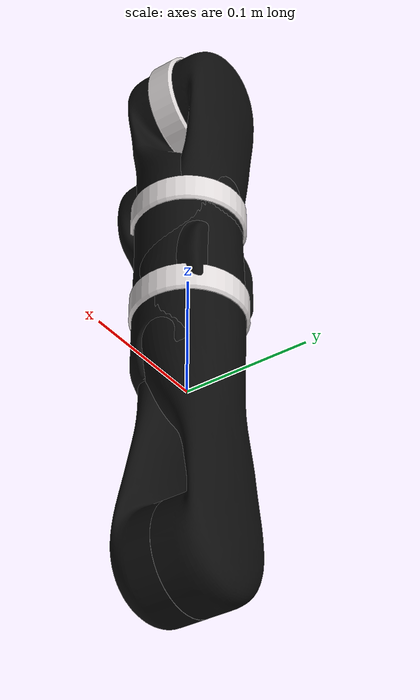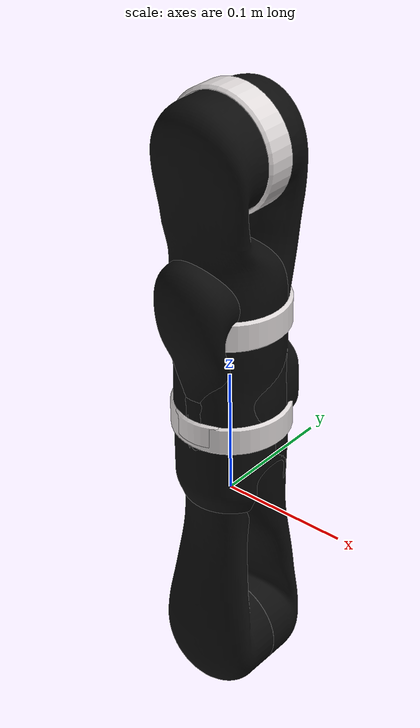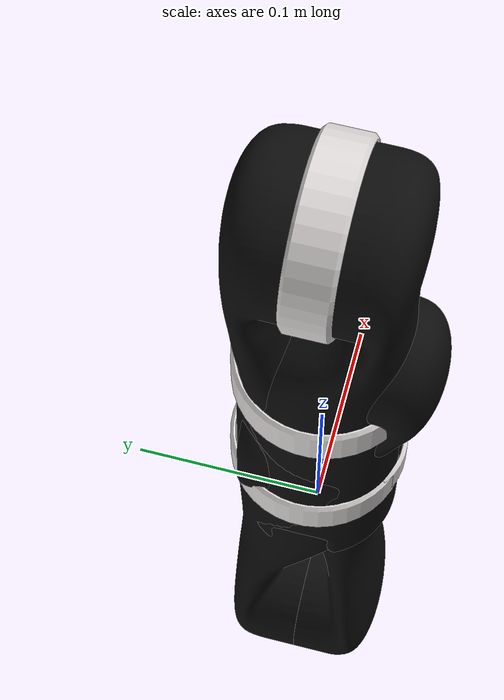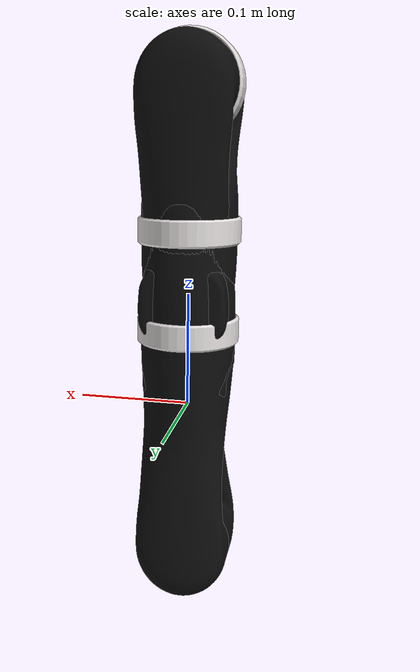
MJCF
<mujoco model="jaco_v2">
    <actuator>
        <motor ctrllimited="true" ctrlrange="-30.5 30.5" joint="j2s7s300_joint_1" name="torq_j1"/>
        <motor ctrllimited="true" ctrlrange="-30.5 30.5" joint="j2s7s300_joint_2" name="torq_j2"/>
        <motor ctrllimited="true" ctrlrange="-30.5 30.5" joint="j2s7s300_joint_3" name="torq_j3"/>
        <motor ctrllimited="true" ctrlrange="-30.5 30.5" joint="j2s7s300_joint_4" name="torq_j4"/>
        <motor ctrllimited="true" ctrlrange="-30.5 30.5" joint="j2s7s300_joint_5" name="torq_j5"/>
        <motor ctrllimited="true" ctrlrange="-6.8 6.8" joint="j2s7s300_joint_6" name="torq_j6"/>
        <motor ctrllimited="true" ctrlrange="-6.8 6.8" joint="j2s7s300_joint_7" name="torq_j7"/>
    </actuator>
    <asset>
        <mesh name="base" file="meshes/base.stl" />
        <mesh name="shoulder" file="meshes/shoulder.stl" />
        <mesh name="ring_big" file="meshes/ring_big.stl" />
        <mesh name="arm_half_1" file="meshes/arm_half_1.stl" />
        <mesh name="arm_half_2" file="meshes/arm_half_2.stl" />
        <mesh name="forearm" file="meshes/forearm.stl" />
        <mesh name="ring_small" file="meshes/ring_small.stl" />
        <mesh name="wrist_spherical_1" file="meshes/wrist_spherical_1.stl" />
        <mesh name="wrist_spherical_2" file="meshes/wrist_spherical_2.stl" />

        <!-- Materials for robot -->
        <texture type="cube" name="carbon_tex" builtin="flat" width="100" height="100" rgb1="1 1 1" rgb2="1 1 1"/>
        <texture type="cube" name="grey_plastic_tex" builtin="flat" width="100" height="100" rgb1="1 1 1" rgb2="1 1 1"/>
        <material name="carbon_jaco" texture="carbon_tex" rgba="0.05 0.05 0.05 1" />
        <material name="grey_plastic_jaco" texture="grey_plastic_tex" rgba="0.88 0.86 0.86 1" />
    </asset>
    <worldbody>
        <body name="base" pos="0 0 0">
            <!-- robot view -->
            <camera mode="fixed" name="robotview" pos="1.0 0 0.4" quat="0.653 0.271 0.271 0.653"/>
            <inertial diaginertia="0 0 0" mass="0" pos="0 0 0"/>
            <!-- mount attached here -->
            <body name="j2s7s300_link_0" pos="0 0 0">
                <inertial pos="0 0 0.05" mass="4" diaginertia="0.4 0.4 0.4" />
                <geom type="mesh" contype="0" conaffinity="0" group="1" material="carbon_jaco" mesh="base" />
                <geom type="mesh" contype="0" conaffinity="1" material="carbon_jaco" mesh="base" name="base_collision"/>
                <body name="j2s7s300_link_1" pos="0 0 0.15675" quat="0 0 1 0">
                    <inertial pos="0 -0.002 -0.0605" mass="0.7477" diaginertia="0.00152032 0.00152032 0.00059816" />
                    <joint name="j2s7s300_joint_1" pos="0 0 0" axis="0 0 1" limited="true" range="-6.28319 6.28319" damping="0.1" frictionloss="0.01"/>
                    <geom type="mesh" contype="0" conaffinity="0" group="1" material="carbon_jaco" name="s_visual" mesh="shoulder" />
                    <geom type="mesh" contype="0" conaffinity="0" group="1" material="grey_plastic_jaco" name="s_ring_visual" mesh="ring_big" />
                    <geom type="mesh" contype="0" conaffinity="1" material="carbon_jaco" mesh="shoulder" name="s_collision"/>
                    <body name="j2s7s300_link_2" pos="0 0.0016 -0.11875" quat="0 0 -0.707107 0.707107">
                        <inertial pos="0 -0.103563 0" quat="0.707107 0.707107 0 0" mass="0.8447" diaginertia="0.00247074 0.00247074 0.000380115" />
                        <joint name="j2s7s300_joint_2" pos="0 0 0" axis="0 0 1" limited="true" range="0.820305 5.46288" damping="0.1" frictionloss="0.01"/>
                        <geom type="mesh" contype="0" conaffinity="0" group="1" material="carbon_jaco" name="ah1_visual" mesh="arm_half_1" />
                        <geom type="mesh" contype="0" conaffinity="0" group="1" material="grey_plastic_jaco" name="ah1_ring_visual" mesh="ring_big" />
                        <geom type="mesh" material="carbon_jaco" mesh="arm_half_1" name="ah1_collision"/>
                        <body name="j2s7s300_link_3" pos="0 -0.205 0" quat="0.707107 -0.707107 0 0">
                            <inertial pos="0 0 -0.102245" mass="0.8447" diaginertia="0.00247074 0.00247074 0.000380115" />
                            <joint name="j2s7s300_joint_3" pos="0 0 0" axis="0 0 1" limited="true" range="-6.28319 6.28319" damping="0.1" frictionloss="0.01"/>
                            <geom type="mesh" contype="0" conaffinity="0" group="1" material="carbon_jaco" name="ah2_visual" mesh="arm_half_2" />
                            <geom type="mesh" contype="0" conaffinity="0" group="1" material="grey_plastic_jaco" name="ah2_ring_visual" mesh="ring_big" />
                            <geom type="mesh" material="carbon_jaco" mesh="arm_half_2" name="ah2_collision"/>
                            <body name="j2s7s300_link_4" pos="0 0 -0.205" quat="0 0 0.707107 0.707107">
                                <inertial pos="0 0.081 -0.0086" quat="0.707107 0.707107 0 0" mass="0.6763" diaginertia="0.00142022 0.00142022 0.000304335" />
                                <joint name="j2s7s300_joint_4" pos="0 0 0" axis="0 0 1" limited="true" range="0.523599 5.75959" damping="0.1" frictionloss="0.01"/>
                                <geom type="mesh" contype="0" conaffinity="0" group="1" material="carbon_jaco" name="f_visual" mesh="forearm" />
                                <geom type="mesh" contype="0" conaffinity="0" group="1" material="grey_plastic_jaco" name="f_ring_visual" mesh="ring_small" />
                                <geom type="mesh" material="carbon_jaco" mesh="forearm" name="f_collision"/>
                                <body name="j2s7s300_link_5" pos="0 0.2073 -0.0114" quat="0 0 -0.707107 0.707107">
                                    <inertial pos="0 0.00288489 -0.0541933" mass="0.463" diaginertia="0.000432132 0.000432132 9.26e-05" />
                                    <joint name="j2s7s300_joint_5" pos="0 0 0" axis="0 0 1" limited="true" range="-6.28319 6.28319" damping="0.1" frictionloss="0.01"/>
                                    <geom type="mesh" contype="0" conaffinity="0" group="1" material="carbon_jaco" name="ws1_visual" mesh="wrist_spherical_1" />
                                    <geom type="mesh" contype="0" conaffinity="0" group="1" material="grey_plastic_jaco" name="ws1_ring_visual" mesh="ring_small" />
                                    <geom type="mesh" material="carbon_jaco" mesh="wrist_spherical_1" name="ws1_collision"/>
                                    <body name="j2s7s300_link_6" pos="0 0 -0.10375" quat="0 0 0.707107 0.707107">
                                        <inertial pos="0 0.0497209 -0.00285628" quat="0.707107 0.707107 0 0" mass="0.463" diaginertia="0.000432132 0.000432132 9.26e-05" />
                                        <joint name="j2s7s300_joint_6" pos="0 0 0" axis="0 0 1" limited="true" range="1.13446 5.14872" damping="0.01" frictionloss="0.01"/>
                                        <geom type="mesh" contype="0" conaffinity="0" group="1" material="carbon_jaco" name="ws2_visual" mesh="wrist_spherical_2" />
                                        <geom type="mesh" contype="0" conaffinity="0" group="1" material="grey_plastic_jaco" name="ws2_ring_visual" mesh="ring_small" />
                                        <geom type="mesh" material="carbon_jaco" mesh="wrist_spherical_2" name="ws2_collision"/>
                                        <body name="j2s7s300_link_7" pos="0 0.10375 0" quat="0 0 -0.707107 0.707107">
                                            <inertial pos="0 0 -0.06" quat="0.5 0.5 -0.5 0.5" mass="1e-6" diaginertia="1e-6 1e-6 1e-6" />
                                            <joint name="j2s7s300_joint_7" pos="0 0 0" axis="0 0 1" limited="true" range="-6.28319 6.28319" damping="0.01" frictionloss="0.01"/>
                                            <body name="right_hand" pos="0 0 0" quat="0 1 0 0">
                                                <!-- This camera points out from the eef. -->
                                                <camera mode="fixed" name="eye_in_hand" pos="0.08 0 0" quat="0 0.707108 0.707108 0" fovy="75"/>
                                                <!-- To add gripper -->
                                            </body>
                                        </body>
                                    </body>
                                </body>
                            </body>
                        </body>
                    </body>
                </body>
            </body>
        </body>
    </worldbody>
</mujoco>
